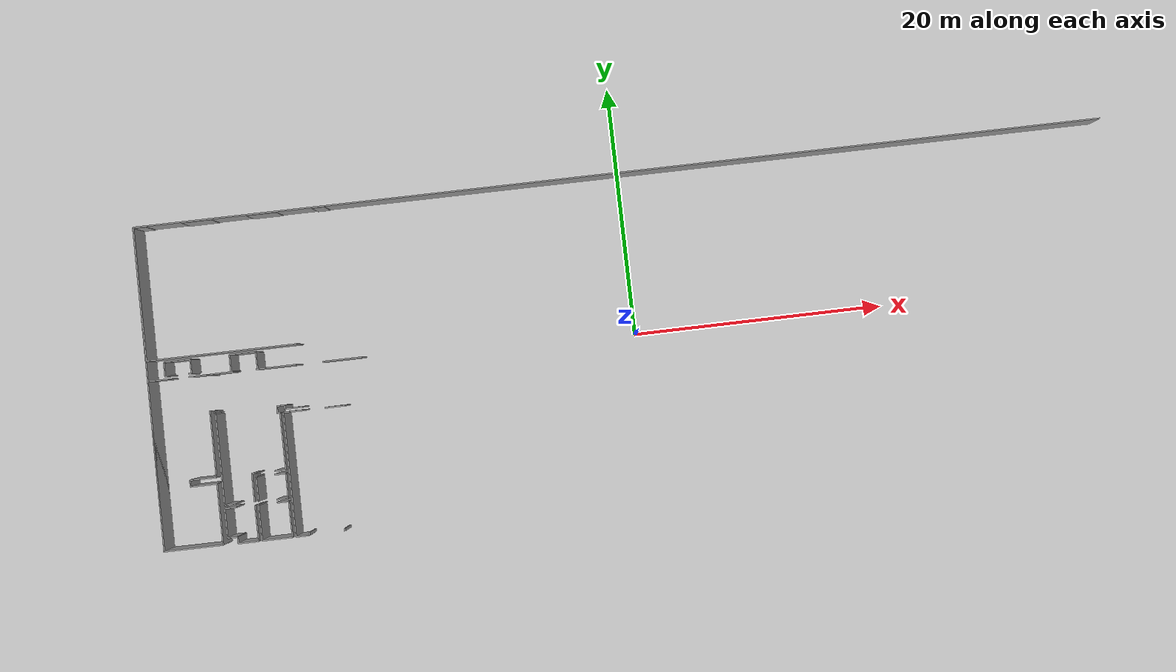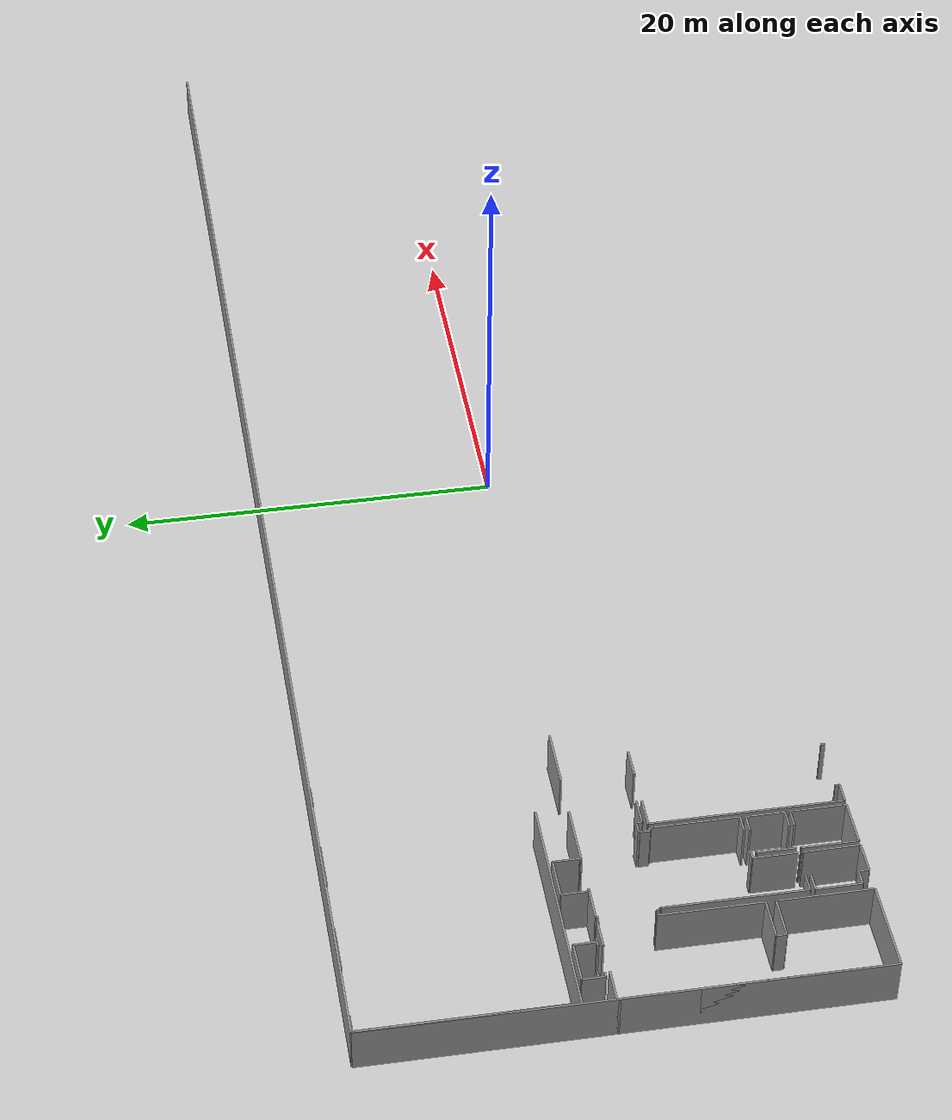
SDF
<sdf version="1.6">
 <world name="default">
  <model name="ground_plane">
   <static>1</static>
   <link name="link">
    <collision name="collision">
     <geometry><plane><normal>0 0 1</normal><size>100 100</size></plane></geometry>
     <surface><friction><ode><mu>100</mu><mu2>50</mu2></ode></friction></surface>
    </collision>
    <visual name="visual">
     <cast_shadows>0</cast_shadows>
     <geometry><plane><normal>0 0 1</normal><size>100 100</size></plane></geometry>
     <material>
      <script><uri>file://media/materials/scripts/gazebo.material</uri><name>Gazebo/Grey</name></script>
     </material>
    </visual>
   </link>
  </model>
  <model name="0510030967_A-40">
   <static>1</static>
   <link name="Wall_1">
    <collision name="Wall_1_Collision">
     <geometry><box><size>11.944215217 0.1 2.5</size></box></geometry>
     <pose>5.97210760852 0 1.25 0 0 0</pose>
    </collision>
    <visual name="Wall_1_Visual">
     <pose>5.97210760852 0 1.25 0 0 0</pose>
     <geometry><box><size>11.944215217 0.1 2.5</size></box></geometry>
     <material>
      <script><uri>file://media/materials/scripts/gazebo.material</uri><name>Gazebo/Grey</name></script>
      <ambient>1 1 1 1</ambient>
     </material>
    </visual>
    <pose>11.9891578961 -10.6718549646 0 0 0 3.14159265359</pose>
   </link>
   <link name="Wall_2">
    <collision name="Wall_2_Collision">
     <geometry><box><size>10.6305940305 0.1 2.5</size></box></geometry>
     <pose>5.31529701525 0 1.25 0 0 0</pose>
    </collision>
    <visual name="Wall_2_Visual">
     <pose>5.31529701525 0 1.25 0 0 0</pose>
     <geometry><box><size>10.6305940305 0.1 2.5</size></box></geometry>
     <material>
      <script><uri>file://media/materials/scripts/gazebo.material</uri><name>Gazebo/Grey</name></script>
      <ambient>1 1 1 1</ambient>
     </material>
    </visual>
    <pose>0.0449426790407 -10.6718549646 0 0 0 1.57079632679</pose>
   </link>
   <link name="Wall_3">
    <collision name="Wall_3_Collision">
     <geometry><box><size>0.975027613087 0.1 2.5</size></box></geometry>
     <pose>0.487513806543 0 1.25 0 0 0</pose>
    </collision>
    <visual name="Wall_3_Visual">
     <pose>0.487513806543 0 1.25 0 0 0</pose>
     <geometry><box><size>0.975027613087 0.1 2.5</size></box></geometry>
     <material>
      <script><uri>file://media/materials/scripts/gazebo.material</uri><name>Gazebo/Grey</name></script>
      <ambient>1 1 1 1</ambient>
     </material>
    </visual>
    <pose>0.0449426790407 -0.0412609341475 0 0 0 0.0</pose>
   </link>
   <link name="Wall_4">
    <collision name="Wall_4_Collision">
     <geometry><box><size>2.38589764749 0.1 2.5</size></box></geometry>
     <pose>1.19294882375 0 1.25 0 0 0</pose>
    </collision>
    <visual name="Wall_4_Visual">
     <pose>1.19294882375 0 1.25 0 0 0</pose>
     <geometry><box><size>2.38589764749 0.1 2.5</size></box></geometry>
     <material>
      <script><uri>file://media/materials/scripts/gazebo.material</uri><name>Gazebo/Grey</name></script>
      <ambient>1 1 1 1</ambient>
     </material>
    </visual>
    <pose>3.85440603298 -0.0412609341475 0 0 0 0.0</pose>
   </link>
   <link name="Wall_5">
    <collision name="Wall_5_Collision">
     <geometry><box><size>2.39859331954 0.1 2.5</size></box></geometry>
     <pose>1.19929665977 0 1.25 0 0 0</pose>
    </collision>
    <visual name="Wall_5_Visual">
     <pose>1.19929665977 0 1.25 0 0 0</pose>
     <geometry><box><size>2.39859331954 0.1 2.5</size></box></geometry>
     <material>
      <script><uri>file://media/materials/scripts/gazebo.material</uri><name>Gazebo/Grey</name></script>
      <ambient>1 1 1 1</ambient>
     </material>
    </visual>
    <pose>9.0428732845 -0.0412609341475 0 0 0 0.0</pose>
   </link>
   <link name="Wall_6">
    <collision name="Wall_6_Collision">
     <geometry><box><size>1.02250942654 0.1 2.5</size></box></geometry>
     <pose>0.511254713268 0 1.25 0 0 0</pose>
    </collision>
    <visual name="Wall_6_Visual">
     <pose>0.511254713268 0 1.25 0 0 0</pose>
     <geometry><box><size>1.02250942654 0.1 2.5</size></box></geometry>
     <material>
      <script><uri>file://media/materials/scripts/gazebo.material</uri><name>Gazebo/Grey</name></script>
      <ambient>1 1 1 1</ambient>
     </material>
    </visual>
    <pose>14.2502570874 -0.0412609341475 0 0 0 0.0</pose>
   </link>
   <link name="Wall_8">
    <collision name="Wall_8_Collision">
     <geometry><box><size>0.24616908096 0.1 2.5</size></box></geometry>
     <pose>0.12308454048 0 1.25 0 0 0</pose>
    </collision>
    <visual name="Wall_8_Visual">
     <pose>0.12308454048 0 1.25 0 0 0</pose>
     <geometry><box><size>0.24616908096 0.1 2.5</size></box></geometry>
     <material>
      <script><uri>file://media/materials/scripts/gazebo.material</uri><name>Gazebo/Grey</name></script>
      <ambient>1 1 1 1</ambient>
     </material>
    </visual>
    <pose>3.50095852324 -12.0541597369 0 0 0 3.14159265359</pose>
   </link>
   <link name="Wall_9">
    <collision name="Wall_9_Collision">
     <geometry><box><size>0.258737796285 0.1 2.5</size></box></geometry>
     <pose>0.129368898143 0 1.25 0 0 0</pose>
    </collision>
    <visual name="Wall_9_Visual">
     <pose>0.129368898143 0 1.25 0 0 0</pose>
     <geometry><box><size>0.258737796285 0.1 2.5</size></box></geometry>
     <material>
      <script><uri>file://media/materials/scripts/gazebo.material</uri><name>Gazebo/Grey</name></script>
      <ambient>1 1 1 1</ambient>
     </material>
    </visual>
    <pose>1.65780085569 -12.0541597369 0 0 0 3.14159265359</pose>
   </link>
   <link name="Wall_10">
    <collision name="Wall_10_Collision">
     <geometry><box><size>1.12978785532 0.1 2.5</size></box></geometry>
     <pose>0.56489392766 0 1.25 0 0 0</pose>
    </collision>
    <visual name="Wall_10_Visual">
     <pose>0.56489392766 0 1.25 0 0 0</pose>
     <geometry><box><size>1.12978785532 0.1 2.5</size></box></geometry>
     <material>
      <script><uri>file://media/materials/scripts/gazebo.material</uri><name>Gazebo/Grey</name></script>
      <ambient>1 1 1 1</ambient>
     </material>
    </visual>
    <pose>1.3990630594 -12.0541597369 0 0 0 1.57079632679</pose>
   </link>
   <link name="Wall_11">
    <collision name="Wall_11_Collision">
     <geometry><box><size>2.08297891249 0.1 2.5</size></box></geometry>
     <pose>1.04148945624 0 1.25 0 0 0</pose>
    </collision>
    <visual name="Wall_11_Visual">
     <pose>1.04148945624 0 1.25 0 0 0</pose>
     <geometry><box><size>2.08297891249 0.1 2.5</size></box></geometry>
     <material>
      <script><uri>file://media/materials/scripts/gazebo.material</uri><name>Gazebo/Grey</name></script>
      <ambient>1 1 1 1</ambient>
     </material>
    </visual>
    <pose>1.3990630594 -10.9243718816 0 0 0 0.0</pose>
   </link>
   <link name="Wall_12">
    <collision name="Wall_12_Collision">
     <geometry><box><size>1.12994620843 0.1 2.5</size></box></geometry>
     <pose>0.564973104215 0 1.25 0 0 0</pose>
    </collision>
    <visual name="Wall_12_Visual">
     <pose>0.564973104215 0 1.25 0 0 0</pose>
     <geometry><box><size>1.12994620843 0.1 2.5</size></box></geometry>
     <material>
      <script><uri>file://media/materials/scripts/gazebo.material</uri><name>Gazebo/Grey</name></script>
      <ambient>1 1 1 1</ambient>
     </material>
    </visual>
    <pose>3.48204197189 -10.9243718816 0 0 0 -1.55405443685</pose>
   </link>
   <link name="Wall_13">
    <collision name="Wall_13_Collision">
     <geometry><box><size>4.65550293905 0.1 2.5</size></box></geometry>
     <pose>2.32775146952 0 1.25 0 0 0</pose>
    </collision>
    <visual name="Wall_13_Visual">
     <pose>2.32775146952 0 1.25 0 0 0</pose>
     <geometry><box><size>4.65550293905 0.1 2.5</size></box></geometry>
     <material>
      <script><uri>file://media/materials/scripts/gazebo.material</uri><name>Gazebo/Grey</name></script>
      <ambient>1 1 1 1</ambient>
     </material>
    </visual>
    <pose>4.65550293905 -25.713687204 0 0 0 3.14159265359</pose>
   </link>
   <link name="Wall_14">
    <collision name="Wall_14_Collision">
     <geometry><box><size>9.44596087194 0.1 2.5</size></box></geometry>
     <pose>4.72298043597 0 1.25 0 0 0</pose>
    </collision>
    <visual name="Wall_14_Visual">
     <pose>4.72298043597 0 1.25 0 0 0</pose>
     <geometry><box><size>9.44596087194 0.1 2.5</size></box></geometry>
     <material>
      <script><uri>file://media/materials/scripts/gazebo.material</uri><name>Gazebo/Grey</name></script>
      <ambient>1 1 1 1</ambient>
     </material>
    </visual>
    <pose>0.0 -25.713687204 0 0 0 1.57079632679</pose>
   </link>
   <link name="Wall_15">
    <collision name="Wall_15_Collision">
     <geometry><box><size>0.191958561326 0.1 2.5</size></box></geometry>
     <pose>0.0959792806632 0 1.25 0 0 0</pose>
    </collision>
    <visual name="Wall_15_Visual">
     <pose>0.0959792806632 0 1.25 0 0 0</pose>
     <geometry><box><size>0.191958561326 0.1 2.5</size></box></geometry>
     <material>
      <script><uri>file://media/materials/scripts/gazebo.material</uri><name>Gazebo/Grey</name></script>
      <ambient>1 1 1 1</ambient>
     </material>
    </visual>
    <pose>0.0 -12.4863204134 0 0 0 1.57079632679</pose>
   </link>
   <link name="Wall_16">
    <collision name="Wall_16_Collision">
     <geometry><box><size>1.64777127477 0.1 2.5</size></box></geometry>
     <pose>0.823885637386 0 1.25 0 0 0</pose>
    </collision>
    <visual name="Wall_16_Visual">
     <pose>0.823885637386 0 1.25 0 0 0</pose>
     <geometry><box><size>1.64777127477 0.1 2.5</size></box></geometry>
     <material>
      <script><uri>file://media/materials/scripts/gazebo.material</uri><name>Gazebo/Grey</name></script>
      <ambient>1 1 1 1</ambient>
     </material>
    </visual>
    <pose>0.0 -12.294361852 0 0 0 0.0</pose>
   </link>
   <link name="Wall_17">
    <collision name="Wall_17_Collision">
     <geometry><box><size>1.41379003898 0.1 2.5</size></box></geometry>
     <pose>0.706895019488 0 1.25 0 0 0</pose>
    </collision>
    <visual name="Wall_17_Visual">
     <pose>0.706895019488 0 1.25 0 0 0</pose>
     <geometry><box><size>1.41379003898 0.1 2.5</size></box></geometry>
     <material>
      <script><uri>file://media/materials/scripts/gazebo.material</uri><name>Gazebo/Grey</name></script>
      <ambient>1 1 1 1</ambient>
     </material>
    </visual>
    <pose>3.23587289093 -12.294361852 0 0 0 0.0</pose>
   </link>
   <link name="Wall_18">
    <collision name="Wall_18_Collision">
     <geometry><box><size>0.10067667932 0.1 2.5</size></box></geometry>
     <pose>0.05033833966 0 1.25 0 0 0</pose>
    </collision>
    <visual name="Wall_18_Visual">
     <pose>0.05033833966 0 1.25 0 0 0</pose>
     <geometry><box><size>0.10067667932 0.1 2.5</size></box></geometry>
     <material>
      <script><uri>file://media/materials/scripts/gazebo.material</uri><name>Gazebo/Grey</name></script>
      <ambient>1 1 1 1</ambient>
     </material>
    </visual>
    <pose>4.64966292991 -12.294361852 0 0 0 -1.57079632679</pose>
   </link>
   <link name="Wall_19">
    <collision name="Wall_19_Collision">
     <geometry><box><size>5.25054908782 0.1 2.5</size></box></geometry>
     <pose>2.62527454391 0 1.25 0 0 0</pose>
    </collision>
    <visual name="Wall_19_Visual">
     <pose>2.62527454391 0 1.25 0 0 0</pose>
     <geometry><box><size>5.25054908782 0.1 2.5</size></box></geometry>
     <material>
      <script><uri>file://media/materials/scripts/gazebo.material</uri><name>Gazebo/Grey</name></script>
      <ambient>1 1 1 1</ambient>
     </material>
    </visual>
    <pose>4.64966292991 -15.1492376249 0 0 0 -1.57079632679</pose>
   </link>
   <link name="Wall_20">
    <collision name="Wall_20_Collision">
     <geometry><box><size>2.10037198319 0.1 2.5</size></box></geometry>
     <pose>1.0501859916 0 1.25 0 0 0</pose>
    </collision>
    <visual name="Wall_20_Visual">
     <pose>1.0501859916 0 1.25 0 0 0</pose>
     <geometry><box><size>2.10037198319 0.1 2.5</size></box></geometry>
     <material>
      <script><uri>file://media/materials/scripts/gazebo.material</uri><name>Gazebo/Grey</name></script>
      <ambient>1 1 1 1</ambient>
     </material>
    </visual>
    <pose>4.64966292991 -20.3997867127 0 0 0 3.14159265359</pose>
   </link>
   <link name="Wall_21">
    <collision name="Wall_21_Collision">
     <geometry><box><size>0.509223405741 0.1 2.5</size></box></geometry>
     <pose>0.25461170287 0 1.25 0 0 0</pose>
    </collision>
    <visual name="Wall_21_Visual">
     <pose>0.25461170287 0 1.25 0 0 0</pose>
     <geometry><box><size>0.509223405741 0.1 2.5</size></box></geometry>
     <material>
      <script><uri>file://media/materials/scripts/gazebo.material</uri><name>Gazebo/Grey</name></script>
      <ambient>1 1 1 1</ambient>
     </material>
    </visual>
    <pose>2.54929094672 -20.3997867127 0 0 0 -1.57079632679</pose>
   </link>
   <link name="Wall_22">
    <collision name="Wall_22_Collision">
     <geometry><box><size>2.09529371437 0.1 2.5</size></box></geometry>
     <pose>1.04764685719 0 1.25 0 0 0</pose>
    </collision>
    <visual name="Wall_22_Visual">
     <pose>1.04764685719 0 1.25 0 0 0</pose>
     <geometry><box><size>2.09529371437 0.1 2.5</size></box></geometry>
     <material>
      <script><uri>file://media/materials/scripts/gazebo.material</uri><name>Gazebo/Grey</name></script>
      <ambient>1 1 1 1</ambient>
     </material>
    </visual>
    <pose>2.54929094672 -20.9090101185 0 0 0 0.0</pose>
   </link>
   <link name="Wall_23">
    <collision name="Wall_23_Collision">
     <geometry><box><size>4.80468949106 0.1 2.5</size></box></geometry>
     <pose>2.40234474553 0 1.25 0 0 0</pose>
    </collision>
    <visual name="Wall_23_Visual">
     <pose>2.40234474553 0 1.25 0 0 0</pose>
     <geometry><box><size>4.80468949106 0.1 2.5</size></box></geometry>
     <material>
      <script><uri>file://media/materials/scripts/gazebo.material</uri><name>Gazebo/Grey</name></script>
      <ambient>1 1 1 1</ambient>
     </material>
    </visual>
    <pose>4.64458466109 -20.9090101185 0 0 0 -1.5685239037</pose>
   </link>
   <link name="Wall_24">
    <collision name="Wall_24_Collision">
     <geometry><box><size>0.126194980131 0.1 2.5</size></box></geometry>
     <pose>0.0630974900656 0 1.25 0 0 0</pose>
    </collision>
    <visual name="Wall_24_Visual">
     <pose>0.0630974900656 0 1.25 0 0 0</pose>
     <geometry><box><size>0.126194980131 0.1 2.5</size></box></geometry>
     <material>
      <script><uri>file://media/materials/scripts/gazebo.material</uri><name>Gazebo/Grey</name></script>
      <ambient>1 1 1 1</ambient>
     </material>
    </visual>
    <pose>8.71430929196 -12.2597026674 0 0 0 3.14159265359</pose>
   </link>
   <link name="Wall_25">
    <collision name="Wall_25_Collision">
     <geometry><box><size>0.141048916424 0.1 2.5</size></box></geometry>
     <pose>0.0705244582122 0 1.25 0 0 0</pose>
    </collision>
    <visual name="Wall_25_Visual">
     <pose>0.0705244582122 0 1.25 0 0 0</pose>
     <geometry><box><size>0.141048916424 0.1 2.5</size></box></geometry>
     <material>
      <script><uri>file://media/materials/scripts/gazebo.material</uri><name>Gazebo/Grey</name></script>
      <ambient>1 1 1 1</ambient>
     </material>
    </visual>
    <pose>6.75105056686 -12.2597026674 0 0 0 3.14159265359</pose>
   </link>
   <link name="Wall_26">
    <collision name="Wall_26_Collision">
     <geometry><box><size>1.34612210697 0.1 2.5</size></box></geometry>
     <pose>0.673061053487 0 1.25 0 0 0</pose>
    </collision>
    <visual name="Wall_26_Visual">
     <pose>0.673061053487 0 1.25 0 0 0</pose>
     <geometry><box><size>1.34612210697 0.1 2.5</size></box></geometry>
     <material>
      <script><uri>file://media/materials/scripts/gazebo.material</uri><name>Gazebo/Grey</name></script>
      <ambient>1 1 1 1</ambient>
     </material>
    </visual>
    <pose>6.61000165044 -12.2597026674 0 0 0 1.57079632679</pose>
   </link>
   <link name="Wall_27">
    <collision name="Wall_27_Collision">
     <geometry><box><size>2.08754935443 0.1 2.5</size></box></geometry>
     <pose>1.04377467721 0 1.25 0 0 0</pose>
    </collision>
    <visual name="Wall_27_Visual">
     <pose>1.04377467721 0 1.25 0 0 0</pose>
     <geometry><box><size>2.08754935443 0.1 2.5</size></box></geometry>
     <material>
      <script><uri>file://media/materials/scripts/gazebo.material</uri><name>Gazebo/Grey</name></script>
      <ambient>1 1 1 1</ambient>
     </material>
    </visual>
    <pose>6.61000165044 -10.9135805604 0 0 0 0.0</pose>
   </link>
   <link name="Wall_28">
    <collision name="Wall_28_Collision">
     <geometry><box><size>1.34622641746 0.1 2.5</size></box></geometry>
     <pose>0.673113208731 0 1.25 0 0 0</pose>
    </collision>
    <visual name="Wall_28_Visual">
     <pose>0.673113208731 0 1.25 0 0 0</pose>
     <geometry><box><size>1.34622641746 0.1 2.5</size></box></geometry>
     <material>
      <script><uri>file://media/materials/scripts/gazebo.material</uri><name>Gazebo/Grey</name></script>
      <ambient>1 1 1 1</ambient>
     </material>
    </visual>
    <pose>8.69755100486 -10.9135805604 0 0 0 -1.55834766309</pose>
   </link>
   <link name="Wall_29">
    <collision name="Wall_29_Collision">
     <geometry><box><size>0.902027498826 0.1 2.5</size></box></geometry>
     <pose>0.451013749413 0 1.25 0 0 0</pose>
    </collision>
    <visual name="Wall_29_Visual">
     <pose>0.451013749413 0 1.25 0 0 0</pose>
     <geometry><box><size>0.902027498826 0.1 2.5</size></box></geometry>
     <material>
      <script><uri>file://media/materials/scripts/gazebo.material</uri><name>Gazebo/Grey</name></script>
      <ambient>1 1 1 1</ambient>
     </material>
    </visual>
    <pose>10.1393984791 -20.4303832823 0 0 0 3.14159265359</pose>
   </link>
   <link name="Wall_30">
    <collision name="Wall_30_Collision">
     <geometry><box><size>0.403976284485 0.1 2.5</size></box></geometry>
     <pose>0.201988142242 0 1.25 0 0 0</pose>
    </collision>
    <visual name="Wall_30_Visual">
     <pose>0.201988142242 0 1.25 0 0 0</pose>
     <geometry><box><size>0.403976284485 0.1 2.5</size></box></geometry>
     <material>
      <script><uri>file://media/materials/scripts/gazebo.material</uri><name>Gazebo/Grey</name></script>
      <ambient>1 1 1 1</ambient>
     </material>
    </visual>
    <pose>7.84986098239 -20.4303832823 0 0 0 3.14159265359</pose>
   </link>
   <link name="Wall_31">
    <collision name="Wall_31_Collision">
     <geometry><box><size>2.22796348725 0.1 2.5</size></box></geometry>
     <pose>1.11398174362 0 1.25 0 0 0</pose>
    </collision>
    <visual name="Wall_31_Visual">
     <pose>1.11398174362 0 1.25 0 0 0</pose>
     <geometry><box><size>2.22796348725 0.1 2.5</size></box></geometry>
     <material>
      <script><uri>file://media/materials/scripts/gazebo.material</uri><name>Gazebo/Grey</name></script>
      <ambient>1 1 1 1</ambient>
     </material>
    </visual>
    <pose>7.44588469791 -20.4303832823 0 0 0 -1.57079632679</pose>
   </link>
   <link name="Wall_32">
    <collision name="Wall_32_Collision">
     <geometry><box><size>0.894664009039 0.1 2.5</size></box></geometry>
     <pose>0.44733200452 0 1.25 0 0 0</pose>
    </collision>
    <visual name="Wall_32_Visual">
     <pose>0.44733200452 0 1.25 0 0 0</pose>
     <geometry><box><size>0.894664009039 0.1 2.5</size></box></geometry>
     <material>
      <script><uri>file://media/materials/scripts/gazebo.material</uri><name>Gazebo/Grey</name></script>
      <ambient>1 1 1 1</ambient>
     </material>
    </visual>
    <pose>5.96455368365 -22.6583467696 0 0 0 3.14159265359</pose>
   </link>
   <link name="Wall_33">
    <collision name="Wall_33_Collision">
     <geometry><box><size>7.22091738926 0.1 2.5</size></box></geometry>
     <pose>3.61045869463 0 1.25 0 0 0</pose>
    </collision>
    <visual name="Wall_33_Visual">
     <pose>3.61045869463 0 1.25 0 0 0</pose>
     <geometry><box><size>7.22091738926 0.1 2.5</size></box></geometry>
     <material>
      <script><uri>file://media/materials/scripts/gazebo.material</uri><name>Gazebo/Grey</name></script>
      <ambient>1 1 1 1</ambient>
     </material>
    </visual>
    <pose>5.06988967461 -22.6583467696 0 0 0 1.57079632679</pose>
   </link>
   <link name="Wall_34">
    <collision name="Wall_34_Collision">
     <geometry><box><size>0.496400776975 0.1 2.5</size></box></geometry>
     <pose>0.248200388488 0 1.25 0 0 0</pose>
    </collision>
    <visual name="Wall_34_Visual">
     <pose>0.248200388488 0 1.25 0 0 0</pose>
     <geometry><box><size>0.496400776975 0.1 2.5</size></box></geometry>
     <material>
      <script><uri>file://media/materials/scripts/gazebo.material</uri><name>Gazebo/Grey</name></script>
      <ambient>1 1 1 1</ambient>
     </material>
    </visual>
    <pose>9.93944164434 -15.4374293803 0 0 0 -1.57079632679</pose>
   </link>
   <link name="Wall_35">
    <collision name="Wall_35_Collision">
     <geometry><box><size>0.196021176381 0.1 2.5</size></box></geometry>
     <pose>0.0980105881905 0 1.25 0 0 0</pose>
    </collision>
    <visual name="Wall_35_Visual">
     <pose>0.0980105881905 0 1.25 0 0 0</pose>
     <geometry><box><size>0.196021176381 0.1 2.5</size></box></geometry>
     <material>
      <script><uri>file://media/materials/scripts/gazebo.material</uri><name>Gazebo/Grey</name></script>
      <ambient>1 1 1 1</ambient>
     </material>
    </visual>
    <pose>9.93944164434 -15.9338301573 0 0 0 0.0</pose>
   </link>
   <link name="Wall_36">
    <collision name="Wall_36_Collision">
     <geometry><box><size>4.4965548474 0.1 2.5</size></box></geometry>
     <pose>2.2482774237 0 1.25 0 0 0</pose>
    </collision>
    <visual name="Wall_36_Visual">
     <pose>2.2482774237 0 1.25 0 0 0</pose>
     <geometry><box><size>4.4965548474 0.1 2.5</size></box></geometry>
     <material>
      <script><uri>file://media/materials/scripts/gazebo.material</uri><name>Gazebo/Grey</name></script>
      <ambient>1 1 1 1</ambient>
     </material>
    </visual>
    <pose>10.1354628207 -15.9338301573 0 0 0 -1.56992106585</pose>
   </link>
   <link name="Wall_37">
    <collision name="Wall_37_Collision">
     <geometry><box><size>0.170375918849 0.1 2.5</size></box></geometry>
     <pose>0.0851879594246 0 1.25 0 0 0</pose>
    </collision>
    <visual name="Wall_37_Visual">
     <pose>0.0851879594246 0 1.25 0 0 0</pose>
     <geometry><box><size>0.170375918849 0.1 2.5</size></box></geometry>
     <material>
      <script><uri>file://media/materials/scripts/gazebo.material</uri><name>Gazebo/Grey</name></script>
      <ambient>1 1 1 1</ambient>
     </material>
    </visual>
    <pose>4.96527733696 -15.3490675029 0 0 0 1.57079632679</pose>
   </link>
   <link name="Wall_38">
    <collision name="Wall_38_Collision">
     <geometry><box><size>0.130638465347 0.1 2.5</size></box></geometry>
     <pose>0.0653192326736 0 1.25 0 0 0</pose>
    </collision>
    <visual name="Wall_38_Visual">
     <pose>0.0653192326736 0 1.25 0 0 0</pose>
     <geometry><box><size>0.130638465347 0.1 2.5</size></box></geometry>
     <material>
      <script><uri>file://media/materials/scripts/gazebo.material</uri><name>Gazebo/Grey</name></script>
      <ambient>1 1 1 1</ambient>
     </material>
    </visual>
    <pose>4.96527733696 -12.4205568322 0 0 0 1.57079632679</pose>
   </link>
   <link name="Wall_39">
    <collision name="Wall_39_Collision">
     <geometry><box><size>1.78755062399 0.1 2.5</size></box></geometry>
     <pose>0.893775311996 0 1.25 0 0 0</pose>
    </collision>
    <visual name="Wall_39_Visual">
     <pose>0.893775311996 0 1.25 0 0 0</pose>
     <geometry><box><size>1.78755062399 0.1 2.5</size></box></geometry>
     <material>
      <script><uri>file://media/materials/scripts/gazebo.material</uri><name>Gazebo/Grey</name></script>
      <ambient>1 1 1 1</ambient>
     </material>
    </visual>
    <pose>4.96527733696 -12.2899183668 0 0 0 0.0</pose>
   </link>
   <link name="Wall_40">
    <collision name="Wall_40_Collision">
     <geometry><box><size>3.1878832506 0.1 2.5</size></box></geometry>
     <pose>1.5939416253 0 1.25 0 0 0</pose>
    </collision>
    <visual name="Wall_40_Visual">
     <pose>1.5939416253 0 1.25 0 0 0</pose>
     <geometry><box><size>3.1878832506 0.1 2.5</size></box></geometry>
     <material>
      <script><uri>file://media/materials/scripts/gazebo.material</uri><name>Gazebo/Grey</name></script>
      <ambient>1 1 1 1</ambient>
     </material>
    </visual>
    <pose>8.58811431183 -12.2899183668 0 0 0 0.0</pose>
   </link>
   <link name="Wall_41">
    <collision name="Wall_41_Collision">
     <geometry><box><size>3.10663094951 0.1 2.5</size></box></geometry>
     <pose>1.55331547475 0 1.25 0 0 0</pose>
    </collision>
    <visual name="Wall_41_Visual">
     <pose>1.55331547475 0 1.25 0 0 0</pose>
     <geometry><box><size>3.10663094951 0.1 2.5</size></box></geometry>
     <material>
      <script><uri>file://media/materials/scripts/gazebo.material</uri><name>Gazebo/Grey</name></script>
      <ambient>1 1 1 1</ambient>
     </material>
    </visual>
    <pose>13.8902078282 -12.2899183668 0 0 0 0.0</pose>
   </link>
   <link name="Wall_95">
    <collision name="Wall_95_Collision">
     <geometry><box><size>1.39195348306 0.1 2.5</size></box></geometry>
     <pose>0.695976741529 0 1.25 0 0 0</pose>
    </collision>
    <visual name="Wall_95_Visual">
     <pose>0.695976741529 0 1.25 0 0 0</pose>
     <geometry><box><size>1.39195348306 0.1 2.5</size></box></geometry>
     <material>
      <script><uri>file://media/materials/scripts/gazebo.material</uri><name>Gazebo/Grey</name></script>
      <ambient>1 1 1 1</ambient>
     </material>
    </visual>
    <pose>11.9445960872 -15.6653166935 0 0 0 3.14159265359</pose>
   </link>
   <link name="Wall_96">
    <collision name="Wall_96_Collision">
     <geometry><box><size>0.283621313494 0.1 2.5</size></box></geometry>
     <pose>0.141810656747 0 1.25 0 0 0</pose>
    </collision>
    <visual name="Wall_96_Visual">
     <pose>0.141810656747 0 1.25 0 0 0</pose>
     <geometry><box><size>0.283621313494 0.1 2.5</size></box></geometry>
     <material>
      <script><uri>file://media/materials/scripts/gazebo.material</uri><name>Gazebo/Grey</name></script>
      <ambient>1 1 1 1</ambient>
     </material>
    </visual>
    <pose>10.5526426041 -15.6653166935 0 0 0 1.57079632679</pose>
   </link>
   <link name="Wall_97">
    <collision name="Wall_97_Collision">
     <geometry><box><size>0.619802709256 0.1 2.5</size></box></geometry>
     <pose>0.309901354628 0 1.25 0 0 0</pose>
    </collision>
    <visual name="Wall_97_Visual">
     <pose>0.309901354628 0 1.25 0 0 0</pose>
     <geometry><box><size>0.619802709256 0.1 2.5</size></box></geometry>
     <material>
      <script><uri>file://media/materials/scripts/gazebo.material</uri><name>Gazebo/Grey</name></script>
      <ambient>1 1 1 1</ambient>
     </material>
    </visual>
    <pose>10.5526426041 -15.38169538 0 0 0 3.14159265359</pose>
   </link>
   <link name="Wall_98">
    <collision name="Wall_98_Collision">
     <geometry><box><size>0.109582478331 0.1 2.5</size></box></geometry>
     <pose>0.0547912391656 0 1.25 0 0 0</pose>
    </collision>
    <visual name="Wall_98_Visual">
     <pose>0.0547912391656 0 1.25 0 0 0</pose>
     <geometry><box><size>0.109582478331 0.1 2.5</size></box></geometry>
     <material>
      <script><uri>file://media/materials/scripts/gazebo.material</uri><name>Gazebo/Grey</name></script>
      <ambient>1 1 1 1</ambient>
     </material>
    </visual>
    <pose>5.06988967461 -15.38169538 0 0 0 2.83926069137</pose>
   </link>
   <link name="Wall_99">
    <collision name="Wall_99_Collision">
     <geometry><box><size>0.896314446405 0.1 2.5</size></box></geometry>
     <pose>0.448157223203 0 1.25 0 0 0</pose>
    </collision>
    <visual name="Wall_99_Visual">
     <pose>0.448157223203 0 1.25 0 0 0</pose>
     <geometry><box><size>0.896314446405 0.1 2.5</size></box></geometry>
     <material>
      <script><uri>file://media/materials/scripts/gazebo.material</uri><name>Gazebo/Grey</name></script>
      <ambient>1 1 1 1</ambient>
     </material>
    </visual>
    <pose>10.1033427704 -22.6646946056 0 0 0 3.14159265359</pose>
   </link>
   <link name="Wall_100">
    <collision name="Wall_100_Collision">
     <geometry><box><size>1.95678393236 0.1 2.5</size></box></geometry>
     <pose>0.978391966179 0 1.25 0 0 0</pose>
    </collision>
    <visual name="Wall_100_Visual">
     <pose>0.978391966179 0 1.25 0 0 0</pose>
     <geometry><box><size>1.95678393236 0.1 2.5</size></box></geometry>
     <material>
      <script><uri>file://media/materials/scripts/gazebo.material</uri><name>Gazebo/Grey</name></script>
      <ambient>1 1 1 1</ambient>
     </material>
    </visual>
    <pose>7.75527822565 -22.6646946056 0 0 0 1.57079632679</pose>
   </link>
   <link name="Wall_101">
    <collision name="Wall_101_Collision">
     <geometry><box><size>0.0820140414133 0.1 2.5</size></box></geometry>
     <pose>0.0410070207066 0 1.25 0 0 0</pose>
    </collision>
    <visual name="Wall_101_Visual">
     <pose>0.0410070207066 0 1.25 0 0 0</pose>
     <geometry><box><size>0.0820140414133 0.1 2.5</size></box></geometry>
     <material>
      <script><uri>file://media/materials/scripts/gazebo.material</uri><name>Gazebo/Grey</name></script>
      <ambient>1 1 1 1</ambient>
     </material>
    </visual>
    <pose>7.75527822565 -20.7079106733 0 0 0 0.0</pose>
   </link>
   <link name="Wall_102">
    <collision name="Wall_102_Collision">
     <geometry><box><size>0.921959703937 0.1 2.5</size></box></geometry>
     <pose>0.460979851968 0 1.25 0 0 0</pose>
    </collision>
    <visual name="Wall_102_Visual">
     <pose>0.460979851968 0 1.25 0 0 0</pose>
     <geometry><box><size>0.921959703937 0.1 2.5</size></box></geometry>
     <material>
      <script><uri>file://media/materials/scripts/gazebo.material</uri><name>Gazebo/Grey</name></script>
      <ambient>1 1 1 1</ambient>
     </material>
    </visual>
    <pose>9.19179351759 -20.7079106733 0 0 0 0.0</pose>
   </link>
   <link name="Wall_103">
    <collision name="Wall_103_Collision">
     <geometry><box><size>1.95681162492 0.1 2.5</size></box></geometry>
     <pose>0.97840581246 0 1.25 0 0 0</pose>
    </collision>
    <visual name="Wall_103_Visual">
     <pose>0.97840581246 0 1.25 0 0 0</pose>
     <geometry><box><size>1.95681162492 0.1 2.5</size></box></geometry>
     <material>
      <script><uri>file://media/materials/scripts/gazebo.material</uri><name>Gazebo/Grey</name></script>
      <ambient>1 1 1 1</ambient>
     </material>
    </visual>
    <pose>10.1137532215 -20.7079106733 0 0 0 -1.57611646086</pose>
   </link>
   <link name="Wall_104">
    <collision name="Wall_104_Collision">
     <geometry><box><size>2.40417941524 0.1 2.5</size></box></geometry>
     <pose>1.20208970762 0 1.25 0 0 0</pose>
    </collision>
    <visual name="Wall_104_Visual">
     <pose>1.20208970762 0 1.25 0 0 0</pose>
     <geometry><box><size>2.40417941524 0.1 2.5</size></box></geometry>
     <material>
      <script><uri>file://media/materials/scripts/gazebo.material</uri><name>Gazebo/Grey</name></script>
      <ambient>1 1 1 1</ambient>
     </material>
    </visual>
    <pose>10.128988028 -25.7340002793 0 0 0 3.14159265359</pose>
   </link>
   <link name="Wall_105">
    <collision name="Wall_105_Collision">
     <geometry><box><size>2.82148615537 0.1 2.5</size></box></geometry>
     <pose>1.41074307768 0 1.25 0 0 0</pose>
    </collision>
    <visual name="Wall_105_Visual">
     <pose>1.41074307768 0 1.25 0 0 0</pose>
     <geometry><box><size>2.82148615537 0.1 2.5</size></box></geometry>
     <material>
      <script><uri>file://media/materials/scripts/gazebo.material</uri><name>Gazebo/Grey</name></script>
      <ambient>1 1 1 1</ambient>
     </material>
    </visual>
    <pose>7.72480861274 -25.7340002793 0 0 0 1.57079632679</pose>
   </link>
   <link name="Wall_106">
    <collision name="Wall_106_Collision">
     <geometry><box><size>0.0808714309292 0.1 2.5</size></box></geometry>
     <pose>0.0404357154646 0 1.25 0 0 0</pose>
    </collision>
    <visual name="Wall_106_Visual">
     <pose>0.0404357154646 0 1.25 0 0 0</pose>
     <geometry><box><size>0.0808714309292 0.1 2.5</size></box></geometry>
     <material>
      <script><uri>file://media/materials/scripts/gazebo.material</uri><name>Gazebo/Grey</name></script>
      <ambient>1 1 1 1</ambient>
     </material>
    </visual>
    <pose>7.72480861274 -22.9125141239 0 0 0 0.0</pose>
   </link>
   <link name="Wall_107">
    <collision name="Wall_107_Collision">
     <geometry><box><size>0.927672756357 0.1 2.5</size></box></geometry>
     <pose>0.463836378179 0 1.25 0 0 0</pose>
    </collision>
    <visual name="Wall_107_Visual">
     <pose>0.463836378179 0 1.25 0 0 0</pose>
     <geometry><box><size>0.927672756357 0.1 2.5</size></box></geometry>
     <material>
      <script><uri>file://media/materials/scripts/gazebo.material</uri><name>Gazebo/Grey</name></script>
      <ambient>1 1 1 1</ambient>
     </material>
    </visual>
    <pose>9.18633437861 -22.9125141239 0 0 0 0.0</pose>
   </link>
   <link name="Wall_108">
    <collision name="Wall_108_Collision">
     <geometry><box><size>2.82152592618 0.1 2.5</size></box></geometry>
     <pose>1.41076296309 0 1.25 0 0 0</pose>
    </collision>
    <visual name="Wall_108_Visual">
     <pose>1.41076296309 0 1.25 0 0 0</pose>
     <geometry><box><size>2.82152592618 0.1 2.5</size></box></geometry>
     <material>
      <script><uri>file://media/materials/scripts/gazebo.material</uri><name>Gazebo/Grey</name></script>
      <ambient>1 1 1 1</ambient>
     </material>
    </visual>
    <pose>10.114007135 -22.9125141239 0 0 0 -1.56548680146</pose>
   </link>
   <link name="Wall_109">
    <collision name="Wall_109_Collision">
     <geometry><box><size>1.61108078256 0.1 2.5</size></box></geometry>
     <pose>0.805540391281 0 1.25 0 0 0</pose>
    </collision>
    <visual name="Wall_109_Visual">
     <pose>0.805540391281 0 1.25 0 0 0</pose>
     <geometry><box><size>1.61108078256 0.1 2.5</size></box></geometry>
     <material>
      <script><uri>file://media/materials/scripts/gazebo.material</uri><name>Gazebo/Grey</name></script>
      <ambient>1 1 1 1</ambient>
     </material>
    </visual>
    <pose>7.45769167291 -25.7422524661 0 0 0 3.14159265359</pose>
   </link>
   <link name="Wall_110">
    <collision name="Wall_110_Collision">
     <geometry><box><size>0.517475592571 0.1 2.5</size></box></geometry>
     <pose>0.258737796285 0 1.25 0 0 0</pose>
    </collision>
    <visual name="Wall_110_Visual">
     <pose>0.258737796285 0 1.25 0 0 0</pose>
     <geometry><box><size>0.517475592571 0.1 2.5</size></box></geometry>
     <material>
      <script><uri>file://media/materials/scripts/gazebo.material</uri><name>Gazebo/Grey</name></script>
      <ambient>1 1 1 1</ambient>
     </material>
    </visual>
    <pose>5.84661089035 -25.7422524661 0 0 0 1.57079632679</pose>
   </link>
   <link name="Wall_111">
    <collision name="Wall_111_Collision">
     <geometry><box><size>0.792971675956 0.1 2.5</size></box></geometry>
     <pose>0.396485837978 0 1.25 0 0 0</pose>
    </collision>
    <visual name="Wall_111_Visual">
     <pose>0.396485837978 0 1.25 0 0 0</pose>
     <geometry><box><size>0.792971675956 0.1 2.5</size></box></geometry>
     <material>
      <script><uri>file://media/materials/scripts/gazebo.material</uri><name>Gazebo/Grey</name></script>
      <ambient>1 1 1 1</ambient>
     </material>
    </visual>
    <pose>5.84661089035 -25.2247768736 0 0 0 3.14159265359</pose>
   </link>
   <link name="Wall_112">
    <collision name="Wall_112_Collision">
     <geometry><box><size>2.3040105628 0.1 2.5</size></box></geometry>
     <pose>1.1520052814 0 1.25 0 0 0</pose>
    </collision>
    <visual name="Wall_112_Visual">
     <pose>1.1520052814 0 1.25 0 0 0</pose>
     <geometry><box><size>2.3040105628 0.1 2.5</size></box></geometry>
     <material>
      <script><uri>file://media/materials/scripts/gazebo.material</uri><name>Gazebo/Grey</name></script>
      <ambient>1 1 1 1</ambient>
     </material>
    </visual>
    <pose>5.05363921439 -25.2247768736 0 0 0 1.57079632679</pose>
   </link>
   <link name="Wall_113">
    <collision name="Wall_113_Collision">
     <geometry><box><size>0.918151002323 0.1 2.5</size></box></geometry>
     <pose>0.459075501162 0 1.25 0 0 0</pose>
    </collision>
    <visual name="Wall_113_Visual">
     <pose>0.459075501162 0 1.25 0 0 0</pose>
     <geometry><box><size>0.918151002323 0.1 2.5</size></box></geometry>
     <material>
      <script><uri>file://media/materials/scripts/gazebo.material</uri><name>Gazebo/Grey</name></script>
      <ambient>1 1 1 1</ambient>
     </material>
    </visual>
    <pose>5.05363921439 -22.9207663108 0 0 0 0.0</pose>
   </link>
   <link name="Wall_114">
    <collision name="Wall_114_Collision">
     <geometry><box><size>2.82153517187 0.1 2.5</size></box></geometry>
     <pose>1.41076758593 0 1.25 0 0 0</pose>
    </collision>
    <visual name="Wall_114_Visual">
     <pose>1.41076758593 0 1.25 0 0 0</pose>
     <geometry><box><size>2.82153517187 0.1 2.5</size></box></geometry>
     <material>
      <script><uri>file://media/materials/scripts/gazebo.material</uri><name>Gazebo/Grey</name></script>
      <ambient>1 1 1 1</ambient>
     </material>
    </visual>
    <pose>7.44106034253 -22.9207663108 0 0 0 -1.56490186663</pose>
   </link>
   <link name="Wall_116">
    <collision name="Wall_116_Collision">
     <geometry><box><size>0.22090469359 0.1 2.5</size></box></geometry>
     <pose>0.110452346795 0 1.25 0 0 0</pose>
    </collision>
    <visual name="Wall_116_Visual">
     <pose>0.110452346795 0 1.25 0 0 0</pose>
     <geometry><box><size>0.22090469359 0.1 2.5</size></box></geometry>
     <material>
      <script><uri>file://media/materials/scripts/gazebo.material</uri><name>Gazebo/Grey</name></script>
      <ambient>1 1 1 1</ambient>
     </material>
    </visual>
    <pose>14.2743788642 -25.7225741745 0 0 0 1.57079632679</pose>
   </link>
   <link name="Wall_117">
    <collision name="Wall_117_Collision">
     <geometry><box><size>0.231569058108 0.1 2.5</size></box></geometry>
     <pose>0.115784529054 0 1.25 0 0 0</pose>
    </collision>
    <visual name="Wall_117_Visual">
     <pose>0.115784529054 0 1.25 0 0 0</pose>
     <geometry><box><size>0.231569058108 0.1 2.5</size></box></geometry>
     <material>
      <script><uri>file://media/materials/scripts/gazebo.material</uri><name>Gazebo/Grey</name></script>
      <ambient>1 1 1 1</ambient>
     </material>
    </visual>
    <pose>11.4493379207 -25.5016694809 0 0 0 -1.57079632679</pose>
   </link>
   <link name="Wall_118">
    <collision name="Wall_118_Collision">
     <geometry><box><size>1.05259816928 0.1 2.5</size></box></geometry>
     <pose>0.526299084642 0 1.25 0 0 0</pose>
    </collision>
    <visual name="Wall_118_Visual">
     <pose>0.526299084642 0 1.25 0 0 0</pose>
     <geometry><box><size>1.05259816928 0.1 2.5</size></box></geometry>
     <material>
      <script><uri>file://media/materials/scripts/gazebo.material</uri><name>Gazebo/Grey</name></script>
      <ambient>1 1 1 1</ambient>
     </material>
    </visual>
    <pose>11.4493379207 -25.733238539 0 0 0 3.14159265359</pose>
   </link>
   <link name="Wall_119">
    <collision name="Wall_119_Collision">
     <geometry><box><size>9.79940838168 0.1 2.5</size></box></geometry>
     <pose>4.89970419084 0 1.25 0 0 0</pose>
    </collision>
    <visual name="Wall_119_Visual">
     <pose>4.89970419084 0 1.25 0 0 0</pose>
     <geometry><box><size>9.79940838168 0.1 2.5</size></box></geometry>
     <material>
      <script><uri>file://media/materials/scripts/gazebo.material</uri><name>Gazebo/Grey</name></script>
      <ambient>1 1 1 1</ambient>
     </material>
    </visual>
    <pose>10.3967397514 -25.733238539 0 0 0 1.57079632679</pose>
   </link>
   <link name="Wall_120">
    <collision name="Wall_120_Collision">
     <geometry><box><size>1.53896936534 0.1 2.5</size></box></geometry>
     <pose>0.769484682672 0 1.25 0 0 0</pose>
    </collision>
    <visual name="Wall_120_Visual">
     <pose>0.769484682672 0 1.25 0 0 0</pose>
     <geometry><box><size>1.53896936534 0.1 2.5</size></box></geometry>
     <material>
      <script><uri>file://media/materials/scripts/gazebo.material</uri><name>Gazebo/Grey</name></script>
      <ambient>1 1 1 1</ambient>
     </material>
    </visual>
    <pose>10.3967397514 -15.9338301573 0 0 0 0.0</pose>
   </link>
   <link name="Wall_121">
    <collision name="Wall_121_Collision">
     <geometry><box><size>1.55877461373 0.1 2.5</size></box></geometry>
     <pose>0.779387306867 0 1.25 0 0 0</pose>
    </collision>
    <visual name="Wall_121_Visual">
     <pose>0.779387306867 0 1.25 0 0 0</pose>
     <geometry><box><size>1.55877461373 0.1 2.5</size></box></geometry>
     <material>
      <script><uri>file://media/materials/scripts/gazebo.material</uri><name>Gazebo/Grey</name></script>
      <ambient>1 1 1 1</ambient>
     </material>
    </visual>
    <pose>13.7146266838 -15.9338301573 0 0 0 0.0</pose>
   </link>
   <link name="Wall_338">
    <collision name="Wall_338_Collision">
     <geometry><box><size>25.7445376871 0.1 2.5</size></box></geometry>
     <pose>12.8722688436 0 1.25 0 0 0</pose>
    </collision>
    <visual name="Wall_338_Visual">
     <pose>12.8722688436 0 1.25 0 0 0</pose>
     <geometry><box><size>25.7445376871 0.1 2.5</size></box></geometry>
     <material>
      <script><uri>file://media/materials/scripts/gazebo.material</uri><name>Gazebo/Grey</name></script>
      <ambient>1 1 1 1</ambient>
     </material>
    </visual>
    <pose>0.0 -25.7445376871 0 0 0 1.57079632679</pose>
   </link>
   <link name="Wall_339">
    <collision name="Wall_339_Collision">
     <geometry><box><size>77.4778777915 0.1 2.5</size></box></geometry>
     <pose>38.7389388957 0 1.25 0 0 0</pose>
    </collision>
    <visual name="Wall_339_Visual">
     <pose>38.7389388957 0 1.25 0 0 0</pose>
     <geometry><box><size>77.4778777915 0.1 2.5</size></box></geometry>
     <material>
      <script><uri>file://media/materials/scripts/gazebo.material</uri><name>Gazebo/Grey</name></script>
      <ambient>1 1 1 1</ambient>
     </material>
    </visual>
   </link>
   <pose>-38.7 12.8945376871 0 0 0 0</pose>
  </model>
 </world>
</sdf>
